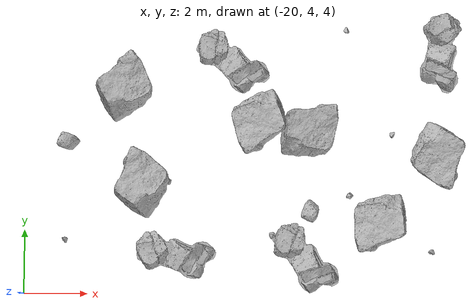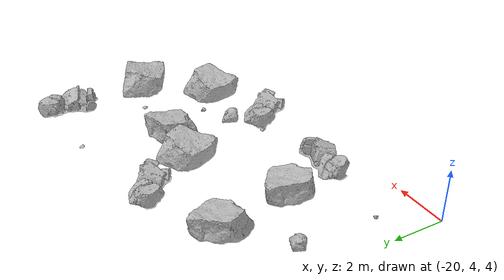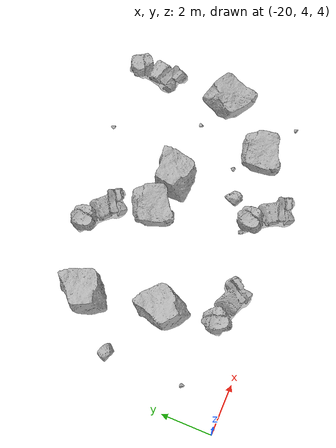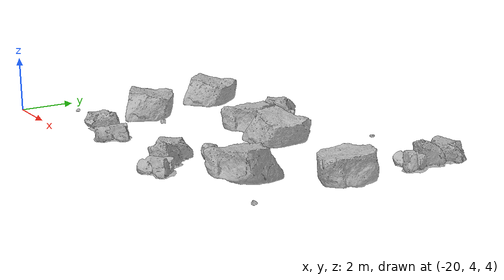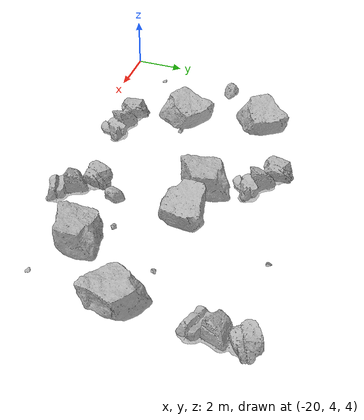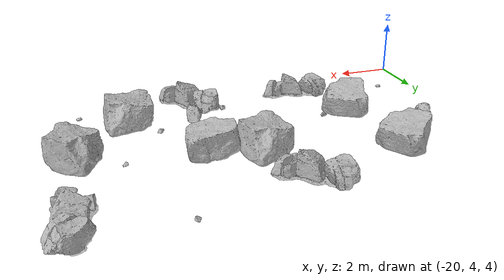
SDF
<sdf version="1.7">
 <world name="marsyard">
  <model name="Rock_1">
   <static>true</static>
   <pose>-9.7385 7.1732 4.0000 0.0000 0.0000 -1.8364</pose>
   <link name="link">
    <visual name="visual">
     <geometry><mesh><uri>package://rock_generator/rocks_ws/rock_9/meshes/rock_9.stl</uri></mesh></geometry>
    </visual>
    <collision name="collision">
     <geometry><mesh><uri>package://rock_generator/rocks_ws/rock_9/meshes/rock_9.stl</uri></mesh></geometry>
    </collision>
   </link>
  </model>
  <model name="Rock_2">
   <static>true</static>
   <pose>-6.8260 8.3622 4.0000 0.0000 0.0000 -2.8873</pose>
   <link name="link">
    <visual name="visual">
     <geometry><mesh><uri>package://rock_generator/rocks_ws/rock_1/meshes/rock_1.stl</uri></mesh></geometry>
    </visual>
    <collision name="collision">
     <geometry><mesh><uri>package://rock_generator/rocks_ws/rock_1/meshes/rock_1.stl</uri></mesh></geometry>
    </collision>
   </link>
  </model>
  <model name="Rock_8">
   <static>true</static>
   <pose>-15.3334 5.2733 4.0000 0.0000 0.0000 -0.1913</pose>
   <link name="link">
    <visual name="visual">
     <geometry><mesh><uri>package://rock_generator/rocks_ws/rock_2/meshes/rock_2.stl</uri></mesh></geometry>
    </visual>
    <collision name="collision">
     <geometry><mesh><uri>package://rock_generator/rocks_ws/rock_2/meshes/rock_2.stl</uri></mesh></geometry>
    </collision>
   </link>
  </model>
  <model name="Rock_9">
   <static>true</static>
   <pose>-18.6663 8.7807 4.0000 0.0000 0.0000 -2.4906</pose>
   <link name="link">
    <visual name="visual">
     <geometry><mesh><uri>package://rock_generator/rocks_ws/rock_3/meshes/rock_3.stl</uri></mesh></geometry>
    </visual>
    <collision name="collision">
     <geometry><mesh><uri>package://rock_generator/rocks_ws/rock_3/meshes/rock_3.stl</uri></mesh></geometry>
    </collision>
   </link>
  </model>
  <model name="Rock_24">
   <static>true</static>
   <pose>-8.7985 6.1644 4.0000 0.0000 0.0000 2.4833</pose>
   <link name="link">
    <visual name="visual">
     <geometry><mesh><uri>package://rock_generator/rocks_ws/rock_1/meshes/rock_1.stl</uri></mesh></geometry>
    </visual>
   </link>
  </model>
  <model name="Rock_25">
   <static>true</static>
   <pose>-6.8515 11.8249 4.0000 0.0000 0.0000 -1.6218</pose>
   <link name="link">
    <visual name="visual">
     <geometry><mesh><uri>package://rock_generator/rocks_ws/rock_2/meshes/rock_2.stl</uri></mesh></geometry>
    </visual>
   </link>
  </model>
  <model name="Rock_29">
   <static>true</static>
   <pose>-12.1892 5.8982 4.0000 0.0000 0.0000 -0.7886</pose>
   <link name="link">
    <visual name="visual">
     <geometry><mesh><uri>package://rock_generator/rocks_ws/rock_9/meshes/rock_9.stl</uri></mesh></geometry>
    </visual>
    <collision name="collision">
     <geometry><mesh><uri>package://rock_generator/rocks_ws/rock_9/meshes/rock_9.stl</uri></mesh></geometry>
    </collision>
   </link>
  </model>
  <model name="Rock_31">
   <static>true</static>
   <pose>-18.7400 5.7213 4.0000 0.0000 0.0000 -1.4938</pose>
   <link name="link">
    <visual name="visual">
     <geometry><mesh><uri>package://rock_generator/rocks_ws/rock_7/meshes/rock_7.stl</uri></mesh></geometry>
    </visual>
    <collision name="collision">
     <geometry><mesh><uri>package://rock_generator/rocks_ws/rock_7/meshes/rock_7.stl</uri></mesh></geometry>
    </collision>
   </link>
  </model>
  <model name="Rock_35">
   <static>true</static>
   <pose>-15.4900 7.5879 4.0000 0.0000 0.0000 -2.8628</pose>
   <link name="link">
    <visual name="visual">
     <geometry><mesh><uri>package://rock_generator/rocks_ws/rock_9/meshes/rock_9.stl</uri></mesh></geometry>
    </visual>
   </link>
  </model>
  <model name="Rock_59">
   <static>true</static>
   <pose>-16.4516 7.6109 4.0000 0.0000 0.0000 0.1839</pose>
   <link name="link">
    <visual name="visual">
     <geometry><mesh><uri>package://rock_generator/rocks_ws/rock_1/meshes/rock_1.stl</uri></mesh></geometry>
    </visual>
   </link>
  </model>
  <model name="Rock_65">
   <static>true</static>
   <pose>-8.4012 9.1139 4.0000 0.0000 0.0000 0.4850</pose>
   <link name="link">
    <visual name="visual">
     <geometry><mesh><uri>package://rock_generator/rocks_ws/rock_7/meshes/rock_7.stl</uri></mesh></geometry>
    </visual>
   </link>
  </model>
  <model name="Rock_66">
   <static>true</static>
   <pose>-11.0000 9.3623 4.0000 0.0000 0.0000 -0.8888</pose>
   <link name="link">
    <visual name="visual">
     <geometry><mesh><uri>package://rock_generator/rocks_ws/rock_1/meshes/rock_1.stl</uri></mesh></geometry>
    </visual>
   </link>
  </model>
  <model name="Rock_75">
   <static>true</static>
   <pose>-12.5829 9.3516 4.0000 0.0000 0.0000 2.7278</pose>
   <link name="link">
    <visual name="visual">
     <geometry><mesh><uri>package://rock_generator/rocks_ws/rock_1/meshes/rock_1.stl</uri></mesh></geometry>
    </visual>
    <collision name="collision">
     <geometry><mesh><uri>package://rock_generator/rocks_ws/rock_1/meshes/rock_1.stl</uri></mesh></geometry>
    </collision>
   </link>
  </model>
  <model name="Rock_79">
   <static>true</static>
   <pose>-13.5779 11.4491 4.0000 0.0000 0.0000 -0.6402</pose>
   <link name="link">
    <visual name="visual">
     <geometry><mesh><uri>package://rock_generator/rocks_ws/rock_2/meshes/rock_2.stl</uri></mesh></geometry>
    </visual>
    <collision name="collision">
     <geometry><mesh><uri>package://rock_generator/rocks_ws/rock_2/meshes/rock_2.stl</uri></mesh></geometry>
    </collision>
   </link>
  </model>
  <model name="Rock_87">
   <static>true</static>
   <pose>-16.9536 10.6902 4.0000 0.0000 0.0000 -0.2634</pose>
   <link name="link">
    <visual name="visual">
     <geometry><mesh><uri>package://rock_generator/rocks_ws/rock_1/meshes/rock_1.stl</uri></mesh></geometry>
    </visual>
    <collision name="collision">
     <geometry><mesh><uri>package://rock_generator/rocks_ws/rock_1/meshes/rock_1.stl</uri></mesh></geometry>
    </collision>
   </link>
  </model>
  <model name="Rock_88">
   <static>true</static>
   <pose>-11.2120 5.2218 4.0000 0.0000 0.0000 -0.8618</pose>
   <link name="link">
    <visual name="visual">
     <geometry><mesh><uri>package://rock_generator/rocks_ws/rock_2/meshes/rock_2.stl</uri></mesh></geometry>
    </visual>
    <collision name="collision">
     <geometry><mesh><uri>package://rock_generator/rocks_ws/rock_2/meshes/rock_2.stl</uri></mesh></geometry>
    </collision>
   </link>
  </model>
  <model name="Rock_89">
   <static>true</static>
   <pose>-10.9391 6.6707 4.0000 0.0000 0.0000 -0.8971</pose>
   <link name="link">
    <visual name="visual">
     <geometry><mesh><uri>package://rock_generator/rocks_ws/rock_3/meshes/rock_3.stl</uri></mesh></geometry>
    </visual>
   </link>
  </model>
  <model name="Rock_94">
   <static>true</static>
   <pose>-7.1400 5.4093 4.0000 0.0000 0.0000 -0.9411</pose>
   <link name="link">
    <visual name="visual">
     <geometry><mesh><uri>package://rock_generator/rocks_ws/rock_7/meshes/rock_7.stl</uri></mesh></geometry>
    </visual>
   </link>
  </model>
  <model name="Rock_99">
   <static>true</static>
   <pose>-9.8571 12.4310 4.0000 0.0000 0.0000 1.3941</pose>
   <link name="link">
    <visual name="visual">
     <geometry><mesh><uri>package://rock_generator/rocks_ws/rock_7/meshes/rock_7.stl</uri></mesh></geometry>
    </visual>
   </link>
  </model>
 </world>
</sdf>
